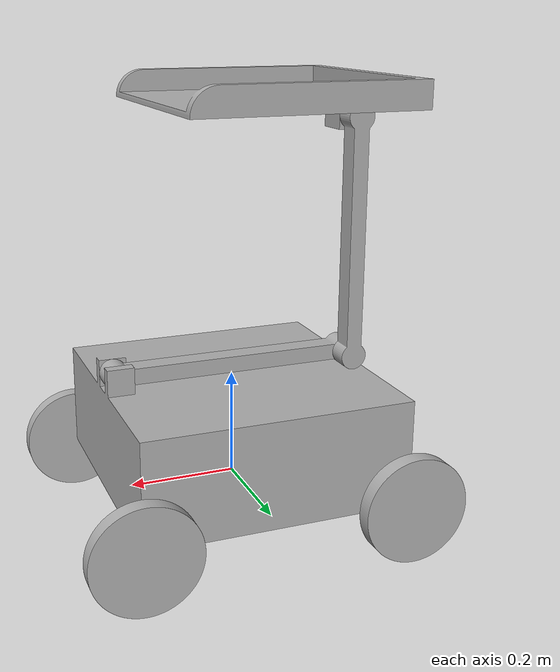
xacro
<?xml version="1.0" ?>
<robot name="1131534final" xmlns:xacro="http://www.ros.org/wiki/xacro">

<xacro:include filename="$(find 1131534final_description)/urdf/materials.xacro" />
<xacro:include filename="$(find 1131534final_description)/urdf/1131534final.trans" />
<xacro:include filename="$(find 1131534final_description)/urdf/1131534final.gazebo" />
<link name="base_link">
  <inertial>
    <origin xyz="0.0004491017964071855 6.8019321255252e-06 0.10024950099800399" rpy="0 0 0"/>
    <mass value="393.2850000000001"/>
    <inertia ixx="9.498563" iyy="9.537646" izz="16.394733" ixy="-0.000601" iyz="-0.000334" ixz="-0.022034"/>
  </inertial>
  <visual>
    <origin xyz="0 0 0" rpy="0 0 0"/>
    <geometry>
      <mesh filename="package://1131534final_description/meshes/base_link.stl" scale="0.001 0.001 0.001"/>
    </geometry>
    <material name="silver"/>
  </visual>
  <collision>
    <origin xyz="0 0 0" rpy="0 0 0"/>
    <geometry>
      <mesh filename="package://1131534final_description/meshes/base_link.stl" scale="0.001 0.001 0.001"/>
    </geometry>
  </collision>
</link>

<link name="lf_wheel_1">
  <inertial>
    <origin xyz="5.551115123125783e-17 0.015000000000000013 0.0" rpy="0 0 0"/>
    <mass value="7.3984506992039565"/>
    <inertia ixx="0.019051" iyy="0.036992" izz="0.019051" ixy="-0.0" iyz="-0.0" ixz="0.0"/>
  </inertial>
  <visual>
    <origin xyz="-0.25 -0.25 -0.0" rpy="0 0 0"/>
    <geometry>
      <mesh filename="package://1131534final_description/meshes/lf_wheel_1.stl" scale="0.001 0.001 0.001"/>
    </geometry>
    <material name="silver"/>
  </visual>
  <collision>
    <origin xyz="-0.25 -0.25 -0.0" rpy="0 0 0"/>
    <geometry>
      <mesh filename="package://1131534final_description/meshes/lf_wheel_1.stl" scale="0.001 0.001 0.001"/>
    </geometry>
  </collision>
</link>

<link name="lb_wheel_1">
  <inertial>
    <origin xyz="2.7755575615628914e-17 0.015000000000000013 1.9300077000406776e-17" rpy="0 0 0"/>
    <mass value="7.398450699203957"/>
    <inertia ixx="0.019051" iyy="0.036992" izz="0.019051" ixy="0.0" iyz="0.0" ixz="-0.0"/>
  </inertial>
  <visual>
    <origin xyz="0.25 -0.25 -0.0" rpy="0 0 0"/>
    <geometry>
      <mesh filename="package://1131534final_description/meshes/lb_wheel_1.stl" scale="0.001 0.001 0.001"/>
    </geometry>
    <material name="silver"/>
  </visual>
  <collision>
    <origin xyz="0.25 -0.25 -0.0" rpy="0 0 0"/>
    <geometry>
      <mesh filename="package://1131534final_description/meshes/lb_wheel_1.stl" scale="0.001 0.001 0.001"/>
    </geometry>
  </collision>
</link>

<link name="rb_wheel_1">
  <inertial>
    <origin xyz="2.7755575615628914e-17 -0.015000000000000013 1.9300077000406776e-17" rpy="0 0 0"/>
    <mass value="7.398450699203957"/>
    <inertia ixx="0.019051" iyy="0.036992" izz="0.019051" ixy="-0.0" iyz="-0.0" ixz="-0.0"/>
  </inertial>
  <visual>
    <origin xyz="0.25 0.25 -0.0" rpy="0 0 0"/>
    <geometry>
      <mesh filename="package://1131534final_description/meshes/rb_wheel_1.stl" scale="0.001 0.001 0.001"/>
    </geometry>
    <material name="silver"/>
  </visual>
  <collision>
    <origin xyz="0.25 0.25 -0.0" rpy="0 0 0"/>
    <geometry>
      <mesh filename="package://1131534final_description/meshes/rb_wheel_1.stl" scale="0.001 0.001 0.001"/>
    </geometry>
  </collision>
</link>

<link name="rf_wheel_1">
  <inertial>
    <origin xyz="5.551115123125783e-17 -0.015000000000000013 -3.552713678800501e-17" rpy="0 0 0"/>
    <mass value="7.3984506992039565"/>
    <inertia ixx="0.019051" iyy="0.036992" izz="0.019051" ixy="0.0" iyz="-0.0" ixz="-0.0"/>
  </inertial>
  <visual>
    <origin xyz="-0.25 0.25 -0.0" rpy="0 0 0"/>
    <geometry>
      <mesh filename="package://1131534final_description/meshes/rf_wheel_1.stl" scale="0.001 0.001 0.001"/>
    </geometry>
    <material name="silver"/>
  </visual>
  <collision>
    <origin xyz="-0.25 0.25 -0.0" rpy="0 0 0"/>
    <geometry>
      <mesh filename="package://1131534final_description/meshes/rf_wheel_1.stl" scale="0.001 0.001 0.001"/>
    </geometry>
  </collision>
</link>

<link name="down_arm_1">
  <inertial>
    <origin xyz="-0.22499999999999995 0.01999976799488658 -2.7755575615628914e-17" rpy="0 0 0"/>
    <mass value="5.0311009313326345"/>
    <inertia ixx="0.00115" iyy="0.114555" izz="0.114747" ixy="0.0" iyz="-0.0" ixz="-0.0"/>
  </inertial>
  <visual>
    <origin xyz="-0.225 0.016592 -0.225" rpy="0 0 0"/>
    <geometry>
      <mesh filename="package://1131534final_description/meshes/down_arm_1.stl" scale="0.001 0.001 0.001"/>
    </geometry>
    <material name="silver"/>
  </visual>
  <collision>
    <origin xyz="-0.225 0.016592 -0.225" rpy="0 0 0"/>
    <geometry>
      <mesh filename="package://1131534final_description/meshes/down_arm_1.stl" scale="0.001 0.001 0.001"/>
    </geometry>
  </collision>
</link>

<link name="up_arm_1">
  <inertial>
    <origin xyz="8.326672684688674e-17 0.01999976799488658 0.22500000000000006" rpy="0 0 0"/>
    <mass value="5.031100931332634"/>
    <inertia ixx="0.114747" iyy="0.114555" izz="0.00115" ixy="0.0" iyz="0.0" ixz="0.0"/>
  </inertial>
  <visual>
    <origin xyz="0.225 -0.023408 -0.225" rpy="0 0 0"/>
    <geometry>
      <mesh filename="package://1131534final_description/meshes/up_arm_1.stl" scale="0.001 0.001 0.001"/>
    </geometry>
    <material name="silver"/>
  </visual>
  <collision>
    <origin xyz="0.225 -0.023408 -0.225" rpy="0 0 0"/>
    <geometry>
      <mesh filename="package://1131534final_description/meshes/up_arm_1.stl" scale="0.001 0.001 0.001"/>
    </geometry>
  </collision>
</link>

<link name="basket_1">
  <inertial>
    <origin xyz="0.13355678325263115 -0.023741255373806242 0.03659565176652768" rpy="0 0 0"/>
    <mass value="23.292507176602623"/>
    <inertia ixx="0.499285" iyy="0.399606" izz="0.88667" ixy="-0.001037" iyz="-0.000284" ixz="0.003031"/>
  </inertial>
  <visual>
    <origin xyz="0.225 -0.023408 -0.675" rpy="0 0 0"/>
    <geometry>
      <mesh filename="package://1131534final_description/meshes/basket_1.stl" scale="0.001 0.001 0.001"/>
    </geometry>
    <material name="silver"/>
  </visual>
  <collision>
    <origin xyz="0.225 -0.023408 -0.675" rpy="0 0 0"/>
    <geometry>
      <mesh filename="package://1131534final_description/meshes/basket_1.stl" scale="0.001 0.001 0.001"/>
    </geometry>
  </collision>
</link>

<joint name="Revolute_lf_wheel" type="continuous">
  <origin xyz="0.25 0.25 0.0" rpy="0 0 0"/>
  <parent link="base_link"/>
  <child link="lf_wheel_1"/>
  <axis xyz="0.0 1.0 0.0"/>
</joint>

<joint name="Revolute_lb_wheel" type="continuous">
  <origin xyz="-0.25 0.25 0.0" rpy="0 0 0"/>
  <parent link="base_link"/>
  <child link="lb_wheel_1"/>
  <axis xyz="0.0 1.0 0.0"/>
</joint>

<joint name="Revolute_rb_wheel" type="continuous">
  <origin xyz="-0.25 -0.25 0.0" rpy="0 0 0"/>
  <parent link="base_link"/>
  <child link="rb_wheel_1"/>
  <axis xyz="0.0 -1.0 0.0"/>
</joint>

<joint name="Revolute_rf_wheel" type="continuous">
  <origin xyz="0.25 -0.25 0.0" rpy="0 0 0"/>
  <parent link="base_link"/>
  <child link="rf_wheel_1"/>
  <axis xyz="0.0 -1.0 0.0"/>
</joint>

<joint name="body_arm" type="continuous">
  <origin xyz="0.225 -0.016592 0.225" rpy="0 0 0"/>
  <parent link="base_link"/>
  <child link="down_arm_1"/>
  <axis xyz="0.0 1.0 0.0"/>
  <!-- 必須確保有這一行，Gazebo 的馬達才有力氣！ -->
  <limit effort="1000.0" velocity="2.0"/>
</joint>

<joint name="arms" type="continuous">
  <origin xyz="-0.45 0.04 0.0" rpy="0 0 0"/>
  <parent link="down_arm_1"/>
  <child link="up_arm_1"/>
  <axis xyz="0.0 1.0 0.0"/>
  <!-- 必須確保有這一行，Gazebo 的馬達才有力氣！ -->
  <limit effort="1000.0" velocity="2.0"/>
</joint>

<joint name="backet_arm" type="continuous">
  <origin xyz="0.0 0.0 0.45" rpy="0 0 0"/>
  <parent link="up_arm_1"/>
  <child link="basket_1"/>
  <axis xyz="0.0 -1.0 0.0"/>
  <!-- 必須確保有這一行，Gazebo 的馬達才有力氣！ -->
  <limit effort="1000.0" velocity="2.0"/>
</joint>

</robot>

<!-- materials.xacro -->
<robot name="1131534final" xmlns:xacro="http://www.ros.org/wiki/xacro" >

<material name="silver">
  <color rgba="0.700 0.700 0.700 1.000"/>
</material>

</robot>

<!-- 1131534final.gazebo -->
<robot name="1131534final" xmlns:xacro="http://www.ros.org/wiki/xacro" >

<xacro:property name="body_color" value="Gazebo/Silver" />

<gazebo>
  <plugin name="control" filename="libgazebo_ros_control.so"/>
</gazebo>
<gazebo reference="base_link">
  <material>${body_color}</material>
  <mu1>0.2</mu1>
  <mu2>0.2</mu2>
  <selfCollide>true</selfCollide>
  <gravity>true</gravity>
</gazebo>

<gazebo reference="lf_wheel_1">
  <material>${body_color}</material>
  <mu1>0.2</mu1>
  <mu2>0.2</mu2>
  <selfCollide>true</selfCollide>
</gazebo>

<gazebo reference="lb_wheel_1">
  <material>${body_color}</material>
  <mu1>0.2</mu1>
  <mu2>0.2</mu2>
  <selfCollide>true</selfCollide>
</gazebo>

<gazebo reference="rb_wheel_1">
  <material>${body_color}</material>
  <mu1>0.2</mu1>
  <mu2>0.2</mu2>
  <selfCollide>true</selfCollide>
</gazebo>

<gazebo reference="rf_wheel_1">
  <material>${body_color}</material>
  <mu1>0.2</mu1>
  <mu2>0.2</mu2>
  <selfCollide>true</selfCollide>
</gazebo>

<gazebo reference="down_arm_1">
  <material>${body_color}</material>
  <mu1>0.2</mu1>
  <mu2>0.2</mu2>
  <selfCollide>true</selfCollide>
</gazebo>

<gazebo reference="up_arm_1">
  <material>${body_color}</material>
  <mu1>0.2</mu1>
  <mu2>0.2</mu2>
  <selfCollide>true</selfCollide>
</gazebo>

<gazebo reference="basket_1">
  <material>${body_color}</material>
  <mu1>0.2</mu1>
  <mu2>0.2</mu2>
  <selfCollide>true</selfCollide>
</gazebo>
<gazebo>
  <plugin name="skid_steer_drive_controller" filename="libgazebo_ros_skid_steer_drive.so">
    <updateRate>100.0</updateRate>
    <robotNamespace>/</robotNamespace>
    <leftFrontJoint>Revolute_lf_wheel</leftFrontJoint>
    <rightFrontJoint>Revolute_rf_wheel</rightFrontJoint>
    <leftRearJoint>Revolute_lb_wheel</leftRearJoint>
    <rightRearJoint>Revolute_rb_wheel</rightRearJoint>
    <wheelSeparation>0.5</wheelSeparation>
    <wheelDiameter>0.5</wheelDiameter>
    <wheelTorque>500</wheelTorque>
        <commandTopic>cmd_vel</commandTopic>
    <odometryTopic>odom</odometryTopic>
    <robotBaseFrame>base_link</robotBaseFrame>
    <odometryFrame>odom</odometryFrame>
    <publishWheelTF>true</publishWheelTF>
    <publishOdom>true</publishOdom>
    <publishWheelJointState>true</publishWheelJointState>
    <covariance_x>0.0001</covariance_x>
    <covariance_y>0.0001</covariance_y>
    <covariance_yaw>0.01</covariance_yaw>
  </plugin>
</gazebo>
<gazebo>
    <plugin name="arm_keyboard_controller" filename="libarm_keyboard_plugin.so">
      <body_arm>body_arm</body_arm>
      <arms>arms</arms>
      <backet_arm>backet_arm</backet_arm>
    </plugin>
  </gazebo>
</robot>
